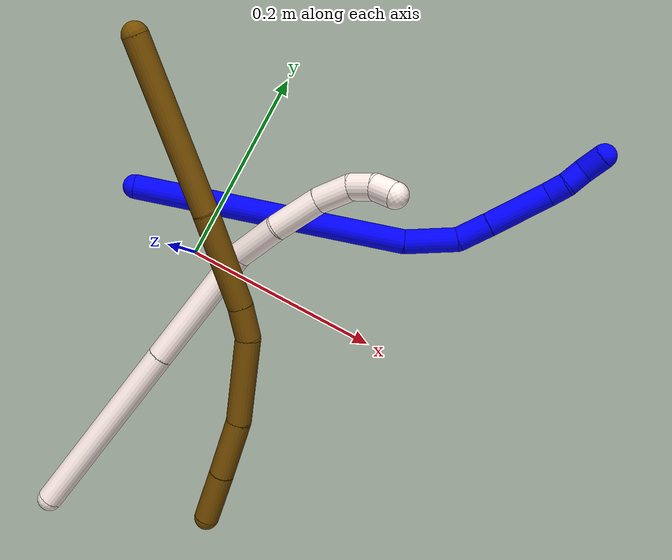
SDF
<sdf version="1.7">
 <world name="default">
  <model name="1">
   <static>0</static>
   <link name="1">
    <collision name="collision-cylinder-e_1_1_4">
     <pose>0.074809 0.035308 0.112748 -0.303488 0.564464 -0.088627</pose>
     <geometry><cylinder><radius>0.0125</radius><length>0.27968</length></cylinder></geometry>
     <surface>
      <friction><ode><mu>1.16</mu><mu2>1.16</mu2><slip1>0</slip1><slip2>0</slip2></ode></friction>
      <contact><ode><kp>1e+06</kp><kd>1</kd><max_vel>0</max_vel><min_depth>0.001</min_depth></ode></contact>
     </surface>
    </collision>
    <visual name="visual-cylinder-e_1_1_4">
     <pose>0.074809 0.035308 0.112748 -0.303488 0.564464 -0.088627</pose>
     <geometry><cylinder><radius>0.0125</radius><length>0.27968</length></cylinder></geometry>
     <material><ambient>0 0 1 1</ambient></material>
    </visual>
    <collision name="collision-cylinder-e_2_4_5">
     <pose>0.167174 0.071193 0.246224 -0.027811 0.702532 -0.010192</pose>
     <geometry><cylinder><radius>0.0125</radius><length>0.054339</length></cylinder></geometry>
     <surface>
      <friction><ode><mu>1.16</mu><mu2>1.16</mu2><slip1>0</slip1><slip2>0</slip2></ode></friction>
      <contact><ode><kp>1e+06</kp><kd>1</kd><max_vel>0</max_vel><min_depth>0.001</min_depth></ode></contact>
     </surface>
    </collision>
    <visual name="visual-cylinder-e_2_4_5">
     <pose>0.167174 0.071193 0.246224 -0.027811 0.702532 -0.010192</pose>
     <geometry><cylinder><radius>0.0125</radius><length>0.054339</length></cylinder></geometry>
     <material><ambient>0 0 1 1</ambient></material>
    </visual>
    <collision name="collision-cylinder-e_3_5_6">
     <pose>0.196224 0.065473 0.277846 0.524041 0.740186 0.20735</pose>
     <geometry><cylinder><radius>0.0125</radius><length>0.034086</length></cylinder></geometry>
     <surface>
      <friction><ode><mu>1.16</mu><mu2>1.16</mu2><slip1>0</slip1><slip2>0</slip2></ode></friction>
      <contact><ode><kp>1e+06</kp><kd>1</kd><max_vel>0</max_vel><min_depth>0.001</min_depth></ode></contact>
     </surface>
    </collision>
    <visual name="visual-cylinder-e_3_5_6">
     <pose>0.196224 0.065473 0.277846 0.524041 0.740186 0.20735</pose>
     <geometry><cylinder><radius>0.0125</radius><length>0.034086</length></cylinder></geometry>
     <material><ambient>0 0 1 1</ambient></material>
    </visual>
    <collision name="collision-cylinder-e_4_6_7">
     <pose>0.229285 0.046365 0.30982 0.546142 0.718435 0.209566</pose>
     <geometry><cylinder><radius>0.0125</radius><length>0.065531</length></cylinder></geometry>
     <surface>
      <friction><ode><mu>1.16</mu><mu2>1.16</mu2><slip1>0</slip1><slip2>0</slip2></ode></friction>
      <contact><ode><kp>1e+06</kp><kd>1</kd><max_vel>0</max_vel><min_depth>0.001</min_depth></ode></contact>
     </surface>
    </collision>
    <visual name="visual-cylinder-e_4_6_7">
     <pose>0.229285 0.046365 0.30982 0.546142 0.718435 0.209566</pose>
     <geometry><cylinder><radius>0.0125</radius><length>0.065531</length></cylinder></geometry>
     <material><ambient>0 0 1 1</ambient></material>
    </visual>
    <collision name="collision-cylinder-e_5_7_8">
     <pose>0.258712 0.02948 0.336156 0.659155 0.868681 0.314723</pose>
     <geometry><cylinder><radius>0.0125</radius><length>0.020591</length></cylinder></geometry>
     <surface>
      <friction><ode><mu>1.16</mu><mu2>1.16</mu2><slip1>0</slip1><slip2>0</slip2></ode></friction>
      <contact><ode><kp>1e+06</kp><kd>1</kd><max_vel>0</max_vel><min_depth>0.001</min_depth></ode></contact>
     </surface>
    </collision>
    <visual name="visual-cylinder-e_5_7_8">
     <pose>0.258712 0.02948 0.336156 0.659155 0.868681 0.314723</pose>
     <geometry><cylinder><radius>0.0125</radius><length>0.020591</length></cylinder></geometry>
     <material><ambient>0 0 1 1</ambient></material>
    </visual>
    <collision name="collision-cylinder-e_6_8_9">
     <pose>0.27296 0.019295 0.347201 0.812588 0.649066 0.287488</pose>
     <geometry><cylinder><radius>0.0125</radius><length>0.021137</length></cylinder></geometry>
     <surface>
      <friction><ode><mu>1.16</mu><mu2>1.16</mu2><slip1>0</slip1><slip2>0</slip2></ode></friction>
      <contact><ode><kp>1e+06</kp><kd>1</kd><max_vel>0</max_vel><min_depth>0.001</min_depth></ode></contact>
     </surface>
    </collision>
    <visual name="visual-cylinder-e_6_8_9">
     <pose>0.27296 0.019295 0.347201 0.812588 0.649066 0.287488</pose>
     <geometry><cylinder><radius>0.0125</radius><length>0.021137</length></cylinder></geometry>
     <material><ambient>0 0 1 1</ambient></material>
    </visual>
    <collision name="collision-cylinder-e_7_9_2">
     <pose>0.289475 0.007468 0.357057 0.952282 0.965098 0.527722</pose>
     <geometry><cylinder><radius>0.0125</radius><length>0.024636</length></cylinder></geometry>
     <surface>
      <friction><ode><mu>1.16</mu><mu2>1.16</mu2><slip1>0</slip1><slip2>0</slip2></ode></friction>
      <contact><ode><kp>1e+06</kp><kd>1</kd><max_vel>0</max_vel><min_depth>0.001</min_depth></ode></contact>
     </surface>
    </collision>
    <visual name="visual-cylinder-e_7_9_2">
     <pose>0.289475 0.007468 0.357057 0.952282 0.965098 0.527722</pose>
     <geometry><cylinder><radius>0.0125</radius><length>0.024636</length></cylinder></geometry>
     <material><ambient>0 0 1 1</ambient></material>
    </visual>
    <collision name="collision-sphere-2">
     <pose>0.299602 0.001754 0.361123 0 -0 0</pose>
     <geometry><sphere><radius>0.0125</radius></sphere></geometry>
     <surface>
      <friction><ode><mu>1.16</mu><mu2>1.16</mu2><slip1>0</slip1><slip2>0</slip2></ode></friction>
      <contact><ode><kp>1e+06</kp><kd>1</kd><max_vel>0</max_vel><min_depth>0.001</min_depth></ode></contact>
     </surface>
    </collision>
    <visual name="visual-sphere-2">
     <pose>0.299602 0.001754 0.361123 0 -0 0</pose>
     <geometry><sphere><radius>0.0125</radius></sphere></geometry>
     <material><ambient>0 0 1 1</ambient></material>
    </visual>
    <collision name="collision-sphere-9">
     <pose>0.279348 0.013182 0.35299 0 -0 0</pose>
     <geometry><sphere><radius>0.0125</radius></sphere></geometry>
     <surface>
      <friction><ode><mu>1.16</mu><mu2>1.16</mu2><slip1>0</slip1><slip2>0</slip2></ode></friction>
      <contact><ode><kp>1e+06</kp><kd>1</kd><max_vel>0</max_vel><min_depth>0.001</min_depth></ode></contact>
     </surface>
    </collision>
    <visual name="visual-sphere-9">
     <pose>0.279348 0.013182 0.35299 0 -0 0</pose>
     <geometry><sphere><radius>0.0125</radius></sphere></geometry>
     <material><ambient>0 0 1 1</ambient></material>
    </visual>
    <collision name="collision-sphere-4">
     <pose>0.149618 0.070617 0.225496 0 -0 0</pose>
     <geometry><sphere><radius>0.0125</radius></sphere></geometry>
     <surface>
      <friction><ode><mu>1.16</mu><mu2>1.16</mu2><slip1>0</slip1><slip2>0</slip2></ode></friction>
      <contact><ode><kp>1e+06</kp><kd>1</kd><max_vel>0</max_vel><min_depth>0.001</min_depth></ode></contact>
     </surface>
    </collision>
    <visual name="visual-sphere-4">
     <pose>0.149618 0.070617 0.225496 0 -0 0</pose>
     <geometry><sphere><radius>0.0125</radius></sphere></geometry>
     <material><ambient>0 0 1 1</ambient></material>
    </visual>
    <collision name="collision-sphere-1">
     <geometry><sphere><radius>0.0125</radius></sphere></geometry>
     <surface>
      <friction><ode><mu>1.16</mu><mu2>1.16</mu2><slip1>0</slip1><slip2>0</slip2></ode></friction>
      <contact><ode><kp>1e+06</kp><kd>1</kd><max_vel>0</max_vel><min_depth>0.001</min_depth></ode></contact>
     </surface>
    </collision>
    <visual name="visual-sphere-1">
     <geometry><sphere><radius>0.0125</radius></sphere></geometry>
     <material><ambient>0 0 1 1</ambient></material>
    </visual>
    <collision name="collision-sphere-8">
     <pose>0.266572 0.025408 0.341412 0 -0 0</pose>
     <geometry><sphere><radius>0.0125</radius></sphere></geometry>
     <surface>
      <friction><ode><mu>1.16</mu><mu2>1.16</mu2><slip1>0</slip1><slip2>0</slip2></ode></friction>
      <contact><ode><kp>1e+06</kp><kd>1</kd><max_vel>0</max_vel><min_depth>0.001</min_depth></ode></contact>
     </surface>
    </collision>
    <visual name="visual-sphere-8">
     <pose>0.266572 0.025408 0.341412 0 -0 0</pose>
     <geometry><sphere><radius>0.0125</radius></sphere></geometry>
     <material><ambient>0 0 1 1</ambient></material>
    </visual>
    <collision name="collision-sphere-5">
     <pose>0.184729 0.07177 0.266951 0 -0 0</pose>
     <geometry><sphere><radius>0.0125</radius></sphere></geometry>
     <surface>
      <friction><ode><mu>1.16</mu><mu2>1.16</mu2><slip1>0</slip1><slip2>0</slip2></ode></friction>
      <contact><ode><kp>1e+06</kp><kd>1</kd><max_vel>0</max_vel><min_depth>0.001</min_depth></ode></contact>
     </surface>
    </collision>
    <visual name="visual-sphere-5">
     <pose>0.184729 0.07177 0.266951 0 -0 0</pose>
     <geometry><sphere><radius>0.0125</radius></sphere></geometry>
     <material><ambient>0 0 1 1</ambient></material>
    </visual>
    <collision name="collision-sphere-6">
     <pose>0.207718 0.059177 0.288742 0 -0 0</pose>
     <geometry><sphere><radius>0.0125</radius></sphere></geometry>
     <surface>
      <friction><ode><mu>1.16</mu><mu2>1.16</mu2><slip1>0</slip1><slip2>0</slip2></ode></friction>
      <contact><ode><kp>1e+06</kp><kd>1</kd><max_vel>0</max_vel><min_depth>0.001</min_depth></ode></contact>
     </surface>
    </collision>
    <visual name="visual-sphere-6">
     <pose>0.207718 0.059177 0.288742 0 -0 0</pose>
     <geometry><sphere><radius>0.0125</radius></sphere></geometry>
     <material><ambient>0 0 1 1</ambient></material>
    </visual>
    <collision name="collision-sphere-7">
     <pose>0.250851 0.033553 0.330899 0 -0 0</pose>
     <geometry><sphere><radius>0.0125</radius></sphere></geometry>
     <surface>
      <friction><ode><mu>1.16</mu><mu2>1.16</mu2><slip1>0</slip1><slip2>0</slip2></ode></friction>
      <contact><ode><kp>1e+06</kp><kd>1</kd><max_vel>0</max_vel><min_depth>0.001</min_depth></ode></contact>
     </surface>
    </collision>
    <visual name="visual-sphere-7">
     <pose>0.250851 0.033553 0.330899 0 -0 0</pose>
     <geometry><sphere><radius>0.0125</radius></sphere></geometry>
     <material><ambient>0 0 1 1</ambient></material>
    </visual>
    <inertial>
     <pose>0.139897 0.040425 0.195487 0 -0 0</pose>
     <mass>0.5</mass>
     <inertia>
      <ixx>0.001473</ixx>
      <ixy>0</ixy>
      <ixz>0</ixz>
      <iyy>0.001686</iyy>
      <iyz>0</iyz>
      <izz>-0.001436</izz>
     </inertia>
    </inertial>
   </link>
   <pose>-0.084567 0.030231 0.011493 3.03291 -0.96611 0.634221</pose>
  </model>
  <model name="11">
   <static>0</static>
   <link name="11">
    <collision name="collision-cylinder-e_1_1_4">
     <pose>0.02085 0.050619 0.079327 -0.567972 0.218047 -0.063874</pose>
     <geometry><cylinder><radius>0.0125</radius><length>0.192767</length></cylinder></geometry>
     <surface>
      <friction><ode><mu>1.16</mu><mu2>1.16</mu2><slip1>0</slip1><slip2>0</slip2></ode></friction>
      <contact><ode><kp>1e+06</kp><kd>1</kd><max_vel>0</max_vel><min_depth>0.001</min_depth></ode></contact>
     </surface>
    </collision>
    <visual name="visual-cylinder-e_1_1_4">
     <pose>0.02085 0.050619 0.079327 -0.567972 0.218047 -0.063874</pose>
     <geometry><cylinder><radius>0.0125</radius><length>0.192767</length></cylinder></geometry>
     <material><ambient>1 0.933333 0.909804 1</ambient></material>
    </visual>
    <collision name="collision-cylinder-e_2_4_5">
     <pose>0.05691 0.135089 0.210434 -0.57899 0.241077 -0.072126</pose>
     <geometry><cylinder><radius>0.0125</radius><length>0.127411</length></cylinder></geometry>
     <surface>
      <friction><ode><mu>1.16</mu><mu2>1.16</mu2><slip1>0</slip1><slip2>0</slip2></ode></friction>
      <contact><ode><kp>1e+06</kp><kd>1</kd><max_vel>0</max_vel><min_depth>0.001</min_depth></ode></contact>
     </surface>
    </collision>
    <visual name="visual-cylinder-e_2_4_5">
     <pose>0.05691 0.135089 0.210434 -0.57899 0.241077 -0.072126</pose>
     <geometry><cylinder><radius>0.0125</radius><length>0.127411</length></cylinder></geometry>
     <material><ambient>1 0.933333 0.909804 1</ambient></material>
    </visual>
    <collision name="collision-cylinder-e_3_5_6">
     <pose>0.074048 0.173847 0.286761 -0.197357 0.076918 -0.007619</pose>
     <geometry><cylinder><radius>0.0125</radius><length>0.050213</length></cylinder></geometry>
     <surface>
      <friction><ode><mu>1.16</mu><mu2>1.16</mu2><slip1>0</slip1><slip2>0</slip2></ode></friction>
      <contact><ode><kp>1e+06</kp><kd>1</kd><max_vel>0</max_vel><min_depth>0.001</min_depth></ode></contact>
     </surface>
    </collision>
    <visual name="visual-cylinder-e_3_5_6">
     <pose>0.074048 0.173847 0.286761 -0.197357 0.076918 -0.007619</pose>
     <geometry><cylinder><radius>0.0125</radius><length>0.050213</length></cylinder></geometry>
     <material><ambient>1 0.933333 0.909804 1</ambient></material>
    </visual>
    <collision name="collision-cylinder-e_4_6_7">
     <pose>0.082087 0.183708 0.334228 -0.212779 0.254857 -0.027363</pose>
     <geometry><cylinder><radius>0.0125</radius><length>0.048464</length></cylinder></geometry>
     <surface>
      <friction><ode><mu>1.16</mu><mu2>1.16</mu2><slip1>0</slip1><slip2>0</slip2></ode></friction>
      <contact><ode><kp>1e+06</kp><kd>1</kd><max_vel>0</max_vel><min_depth>0.001</min_depth></ode></contact>
     </surface>
    </collision>
    <visual name="visual-cylinder-e_4_6_7">
     <pose>0.082087 0.183708 0.334228 -0.212779 0.254857 -0.027363</pose>
     <geometry><cylinder><radius>0.0125</radius><length>0.048464</length></cylinder></geometry>
     <material><ambient>1 0.933333 0.909804 1</ambient></material>
    </visual>
    <collision name="collision-cylinder-e_5_7_8">
     <pose>0.092125 0.188958 0.374004 -0.017716 0.228947 -0.002037</pose>
     <geometry><cylinder><radius>0.0125</radius><length>0.034621</length></cylinder></geometry>
     <surface>
      <friction><ode><mu>1.16</mu><mu2>1.16</mu2><slip1>0</slip1><slip2>0</slip2></ode></friction>
      <contact><ode><kp>1e+06</kp><kd>1</kd><max_vel>0</max_vel><min_depth>0.001</min_depth></ode></contact>
     </surface>
    </collision>
    <visual name="visual-cylinder-e_5_7_8">
     <pose>0.092125 0.188958 0.374004 -0.017716 0.228947 -0.002037</pose>
     <geometry><cylinder><radius>0.0125</radius><length>0.034621</length></cylinder></geometry>
     <material><ambient>1 0.933333 0.909804 1</ambient></material>
    </visual>
    <collision name="collision-cylinder-e_6_8_9">
     <pose>0.097336 0.184862 0.402124 0.372049 0.105696 0.01991</pose>
     <geometry><cylinder><radius>0.0125</radius><length>0.024317</length></cylinder></geometry>
     <surface>
      <friction><ode><mu>1.16</mu><mu2>1.16</mu2><slip1>0</slip1><slip2>0</slip2></ode></friction>
      <contact><ode><kp>1e+06</kp><kd>1</kd><max_vel>0</max_vel><min_depth>0.001</min_depth></ode></contact>
     </surface>
    </collision>
    <visual name="visual-cylinder-e_6_8_9">
     <pose>0.097336 0.184862 0.402124 0.372049 0.105696 0.01991</pose>
     <geometry><cylinder><radius>0.0125</radius><length>0.024317</length></cylinder></geometry>
     <material><ambient>1 0.933333 0.909804 1</ambient></material>
    </visual>
    <collision name="collision-cylinder-e_7_9_2">
     <pose>0.099197 0.17327 0.421823 0.70627 0.052089 0.019203</pose>
     <geometry><cylinder><radius>0.0125</radius><length>0.022207</length></cylinder></geometry>
     <surface>
      <friction><ode><mu>1.16</mu><mu2>1.16</mu2><slip1>0</slip1><slip2>0</slip2></ode></friction>
      <contact><ode><kp>1e+06</kp><kd>1</kd><max_vel>0</max_vel><min_depth>0.001</min_depth></ode></contact>
     </surface>
    </collision>
    <visual name="visual-cylinder-e_7_9_2">
     <pose>0.099197 0.17327 0.421823 0.70627 0.052089 0.019203</pose>
     <geometry><cylinder><radius>0.0125</radius><length>0.022207</length></cylinder></geometry>
     <material><ambient>1 0.933333 0.909804 1</ambient></material>
    </visual>
    <collision name="collision-sphere-2">
     <pose>0.099775 0.166073 0.430259 0 -0 0</pose>
     <geometry><sphere><radius>0.0125</radius></sphere></geometry>
     <surface>
      <friction><ode><mu>1.16</mu><mu2>1.16</mu2><slip1>0</slip1><slip2>0</slip2></ode></friction>
      <contact><ode><kp>1e+06</kp><kd>1</kd><max_vel>0</max_vel><min_depth>0.001</min_depth></ode></contact>
     </surface>
    </collision>
    <visual name="visual-sphere-2">
     <pose>0.099775 0.166073 0.430259 0 -0 0</pose>
     <geometry><sphere><radius>0.0125</radius></sphere></geometry>
     <material><ambient>1 0.933333 0.909804 1</ambient></material>
    </visual>
    <collision name="collision-sphere-9">
     <pose>0.098619 0.180466 0.413387 0 -0 0</pose>
     <geometry><sphere><radius>0.0125</radius></sphere></geometry>
     <surface>
      <friction><ode><mu>1.16</mu><mu2>1.16</mu2><slip1>0</slip1><slip2>0</slip2></ode></friction>
      <contact><ode><kp>1e+06</kp><kd>1</kd><max_vel>0</max_vel><min_depth>0.001</min_depth></ode></contact>
     </surface>
    </collision>
    <visual name="visual-sphere-9">
     <pose>0.098619 0.180466 0.413387 0 -0 0</pose>
     <geometry><sphere><radius>0.0125</radius></sphere></geometry>
     <material><ambient>1 0.933333 0.909804 1</ambient></material>
    </visual>
    <collision name="collision-sphere-4">
     <pose>0.0417 0.101238 0.158653 0 -0 0</pose>
     <geometry><sphere><radius>0.0125</radius></sphere></geometry>
     <surface>
      <friction><ode><mu>1.16</mu><mu2>1.16</mu2><slip1>0</slip1><slip2>0</slip2></ode></friction>
      <contact><ode><kp>1e+06</kp><kd>1</kd><max_vel>0</max_vel><min_depth>0.001</min_depth></ode></contact>
     </surface>
    </collision>
    <visual name="visual-sphere-4">
     <pose>0.0417 0.101238 0.158653 0 -0 0</pose>
     <geometry><sphere><radius>0.0125</radius></sphere></geometry>
     <material><ambient>1 0.933333 0.909804 1</ambient></material>
    </visual>
    <collision name="collision-sphere-1">
     <geometry><sphere><radius>0.0125</radius></sphere></geometry>
     <surface>
      <friction><ode><mu>1.16</mu><mu2>1.16</mu2><slip1>0</slip1><slip2>0</slip2></ode></friction>
      <contact><ode><kp>1e+06</kp><kd>1</kd><max_vel>0</max_vel><min_depth>0.001</min_depth></ode></contact>
     </surface>
    </collision>
    <visual name="visual-sphere-1">
     <geometry><sphere><radius>0.0125</radius></sphere></geometry>
     <material><ambient>1 0.933333 0.909804 1</ambient></material>
    </visual>
    <collision name="collision-sphere-8">
     <pose>0.096053 0.189257 0.39086 0 -0 0</pose>
     <geometry><sphere><radius>0.0125</radius></sphere></geometry>
     <surface>
      <friction><ode><mu>1.16</mu><mu2>1.16</mu2><slip1>0</slip1><slip2>0</slip2></ode></friction>
      <contact><ode><kp>1e+06</kp><kd>1</kd><max_vel>0</max_vel><min_depth>0.001</min_depth></ode></contact>
     </surface>
    </collision>
    <visual name="visual-sphere-8">
     <pose>0.096053 0.189257 0.39086 0 -0 0</pose>
     <geometry><sphere><radius>0.0125</radius></sphere></geometry>
     <material><ambient>1 0.933333 0.909804 1</ambient></material>
    </visual>
    <collision name="collision-sphere-5">
     <pose>0.072119 0.168939 0.262215 0 -0 0</pose>
     <geometry><sphere><radius>0.0125</radius></sphere></geometry>
     <surface>
      <friction><ode><mu>1.16</mu><mu2>1.16</mu2><slip1>0</slip1><slip2>0</slip2></ode></friction>
      <contact><ode><kp>1e+06</kp><kd>1</kd><max_vel>0</max_vel><min_depth>0.001</min_depth></ode></contact>
     </surface>
    </collision>
    <visual name="visual-sphere-5">
     <pose>0.072119 0.168939 0.262215 0 -0 0</pose>
     <geometry><sphere><radius>0.0125</radius></sphere></geometry>
     <material><ambient>1 0.933333 0.909804 1</ambient></material>
    </visual>
    <collision name="collision-sphere-6">
     <pose>0.075978 0.178756 0.311307 0 -0 0</pose>
     <geometry><sphere><radius>0.0125</radius></sphere></geometry>
     <surface>
      <friction><ode><mu>1.16</mu><mu2>1.16</mu2><slip1>0</slip1><slip2>0</slip2></ode></friction>
      <contact><ode><kp>1e+06</kp><kd>1</kd><max_vel>0</max_vel><min_depth>0.001</min_depth></ode></contact>
     </surface>
    </collision>
    <visual name="visual-sphere-6">
     <pose>0.075978 0.178756 0.311307 0 -0 0</pose>
     <geometry><sphere><radius>0.0125</radius></sphere></geometry>
     <material><ambient>1 0.933333 0.909804 1</ambient></material>
    </visual>
    <collision name="collision-sphere-7">
     <pose>0.088196 0.18866 0.357148 0 -0 0</pose>
     <geometry><sphere><radius>0.0125</radius></sphere></geometry>
     <surface>
      <friction><ode><mu>1.16</mu><mu2>1.16</mu2><slip1>0</slip1><slip2>0</slip2></ode></friction>
      <contact><ode><kp>1e+06</kp><kd>1</kd><max_vel>0</max_vel><min_depth>0.001</min_depth></ode></contact>
     </surface>
    </collision>
    <visual name="visual-sphere-7">
     <pose>0.088196 0.18866 0.357148 0 -0 0</pose>
     <geometry><sphere><radius>0.0125</radius></sphere></geometry>
     <material><ambient>1 0.933333 0.909804 1</ambient></material>
    </visual>
    <inertial>
     <pose>0.053452 0.118974 0.209589 0 -0 0</pose>
     <mass>0.5</mass>
     <inertia>
      <ixx>0.00075</ixx>
      <ixy>0</ixy>
      <ixz>0</ixz>
      <iyy>0.000657</iyy>
      <iyz>0</iyz>
      <izz>-0.000559</izz>
     </inertia>
    </inertial>
   </link>
   <pose>-0.010149 -0.288468 0.01848 -0.293447 0.907908 0.522247</pose>
  </model>
  <model name="12">
   <static>0</static>
   <link name="12">
    <collision name="collision-cylinder-e_1_1_4">
     <pose>0.020131 -0.016923 -0.079447 2.93172 0.24294 1.71782</pose>
     <geometry><cylinder><radius>0.0125</radius><length>0.167373</length></cylinder></geometry>
     <surface>
      <friction><ode><mu>1.16</mu><mu2>1.16</mu2><slip1>0</slip1><slip2>0</slip2></ode></friction>
      <contact><ode><kp>1e+06</kp><kd>1</kd><max_vel>0</max_vel><min_depth>0.001</min_depth></ode></contact>
     </surface>
    </collision>
    <visual name="visual-cylinder-e_1_1_4">
     <pose>0.020131 -0.016923 -0.079447 2.93172 0.24294 1.71782</pose>
     <geometry><cylinder><radius>0.0125</radius><length>0.167373</length></cylinder></geometry>
     <material><ambient>0.466667 0.301961 0 1</ambient></material>
    </visual>
    <collision name="collision-cylinder-e_2_4_5">
     <pose>0.053996 -0.048385 -0.202543 2.82008 0.29008 1.46649</pose>
     <geometry><cylinder><radius>0.0125</radius><length>0.096027</length></cylinder></geometry>
     <surface>
      <friction><ode><mu>1.16</mu><mu2>1.16</mu2><slip1>0</slip1><slip2>0</slip2></ode></friction>
      <contact><ode><kp>1e+06</kp><kd>1</kd><max_vel>0</max_vel><min_depth>0.001</min_depth></ode></contact>
     </surface>
    </collision>
    <visual name="visual-cylinder-e_2_4_5">
     <pose>0.053996 -0.048385 -0.202543 2.82008 0.29008 1.46649</pose>
     <geometry><cylinder><radius>0.0125</radius><length>0.096027</length></cylinder></geometry>
     <material><ambient>0.466667 0.301961 0 1</ambient></material>
    </visual>
    <collision name="collision-cylinder-e_3_5_6">
     <pose>0.074239 -0.067333 -0.261182 2.85547 0.394772 1.89321</pose>
     <geometry><cylinder><radius>0.0125</radius><length>0.03385</length></cylinder></geometry>
     <surface>
      <friction><ode><mu>1.16</mu><mu2>1.16</mu2><slip1>0</slip1><slip2>0</slip2></ode></friction>
      <contact><ode><kp>1e+06</kp><kd>1</kd><max_vel>0</max_vel><min_depth>0.001</min_depth></ode></contact>
     </surface>
    </collision>
    <visual name="visual-cylinder-e_3_5_6">
     <pose>0.074239 -0.067333 -0.261182 2.85547 0.394772 1.89321</pose>
     <geometry><cylinder><radius>0.0125</radius><length>0.03385</length></cylinder></geometry>
     <material><ambient>0.466667 0.301961 0 1</ambient></material>
    </visual>
    <collision name="collision-cylinder-e_4_6_7">
     <pose>0.109716 -0.079293 -0.30858 2.9127 0.716266 2.54562</pose>
     <geometry><cylinder><radius>0.0125</radius><length>0.088239</length></cylinder></geometry>
     <surface>
      <friction><ode><mu>1.16</mu><mu2>1.16</mu2><slip1>0</slip1><slip2>0</slip2></ode></friction>
      <contact><ode><kp>1e+06</kp><kd>1</kd><max_vel>0</max_vel><min_depth>0.001</min_depth></ode></contact>
     </surface>
    </collision>
    <visual name="visual-cylinder-e_4_6_7">
     <pose>0.109716 -0.079293 -0.30858 2.9127 0.716266 2.54562</pose>
     <geometry><cylinder><radius>0.0125</radius><length>0.088239</length></cylinder></geometry>
     <material><ambient>0.466667 0.301961 0 1</ambient></material>
    </visual>
    <collision name="collision-cylinder-e_5_7_8">
     <pose>0.162477 -0.090869 -0.359412 2.92646 0.900632 2.70208</pose>
     <geometry><cylinder><radius>0.0125</radius><length>0.06072</length></cylinder></geometry>
     <surface>
      <friction><ode><mu>1.16</mu><mu2>1.16</mu2><slip1>0</slip1><slip2>0</slip2></ode></friction>
      <contact><ode><kp>1e+06</kp><kd>1</kd><max_vel>0</max_vel><min_depth>0.001</min_depth></ode></contact>
     </surface>
    </collision>
    <visual name="visual-cylinder-e_5_7_8">
     <pose>0.162477 -0.090869 -0.359412 2.92646 0.900632 2.70208</pose>
     <geometry><cylinder><radius>0.0125</radius><length>0.06072</length></cylinder></geometry>
     <material><ambient>0.466667 0.301961 0 1</ambient></material>
    </visual>
    <collision name="collision-cylinder-e_6_8_2">
     <pose>0.207558 -0.099308 -0.393669 2.86982 0.913206 2.59865</pose>
     <geometry><cylinder><radius>0.0125</radius><length>0.05379</length></cylinder></geometry>
     <surface>
      <friction><ode><mu>1.16</mu><mu2>1.16</mu2><slip1>0</slip1><slip2>0</slip2></ode></friction>
      <contact><ode><kp>1e+06</kp><kd>1</kd><max_vel>0</max_vel><min_depth>0.001</min_depth></ode></contact>
     </surface>
    </collision>
    <visual name="visual-cylinder-e_6_8_2">
     <pose>0.207558 -0.099308 -0.393669 2.86982 0.913206 2.59865</pose>
     <geometry><cylinder><radius>0.0125</radius><length>0.05379</length></cylinder></geometry>
     <material><ambient>0.466667 0.301961 0 1</ambient></material>
    </visual>
    <collision name="collision-sphere-2">
     <pose>0.228844 -0.10372 -0.409505 0 -0 0</pose>
     <geometry><sphere><radius>0.0125</radius></sphere></geometry>
     <surface>
      <friction><ode><mu>1.16</mu><mu2>1.16</mu2><slip1>0</slip1><slip2>0</slip2></ode></friction>
      <contact><ode><kp>1e+06</kp><kd>1</kd><max_vel>0</max_vel><min_depth>0.001</min_depth></ode></contact>
     </surface>
    </collision>
    <visual name="visual-sphere-2">
     <pose>0.228844 -0.10372 -0.409505 0 -0 0</pose>
     <geometry><sphere><radius>0.0125</radius></sphere></geometry>
     <material><ambient>0.466667 0.301961 0 1</ambient></material>
    </visual>
    <collision name="collision-sphere-4">
     <pose>0.040263 -0.033846 -0.158893 0 -0 0</pose>
     <geometry><sphere><radius>0.0125</radius></sphere></geometry>
     <surface>
      <friction><ode><mu>1.16</mu><mu2>1.16</mu2><slip1>0</slip1><slip2>0</slip2></ode></friction>
      <contact><ode><kp>1e+06</kp><kd>1</kd><max_vel>0</max_vel><min_depth>0.001</min_depth></ode></contact>
     </surface>
    </collision>
    <visual name="visual-sphere-4">
     <pose>0.040263 -0.033846 -0.158893 0 -0 0</pose>
     <geometry><sphere><radius>0.0125</radius></sphere></geometry>
     <material><ambient>0.466667 0.301961 0 1</ambient></material>
    </visual>
    <collision name="collision-sphere-1">
     <geometry><sphere><radius>0.0125</radius></sphere></geometry>
     <surface>
      <friction><ode><mu>1.16</mu><mu2>1.16</mu2><slip1>0</slip1><slip2>0</slip2></ode></friction>
      <contact><ode><kp>1e+06</kp><kd>1</kd><max_vel>0</max_vel><min_depth>0.001</min_depth></ode></contact>
     </surface>
    </collision>
    <visual name="visual-sphere-1">
     <geometry><sphere><radius>0.0125</radius></sphere></geometry>
     <material><ambient>0.466667 0.301961 0 1</ambient></material>
    </visual>
    <collision name="collision-sphere-8">
     <pose>0.186271 -0.094895 -0.377834 0 -0 0</pose>
     <geometry><sphere><radius>0.0125</radius></sphere></geometry>
     <surface>
      <friction><ode><mu>1.16</mu><mu2>1.16</mu2><slip1>0</slip1><slip2>0</slip2></ode></friction>
      <contact><ode><kp>1e+06</kp><kd>1</kd><max_vel>0</max_vel><min_depth>0.001</min_depth></ode></contact>
     </surface>
    </collision>
    <visual name="visual-sphere-8">
     <pose>0.186271 -0.094895 -0.377834 0 -0 0</pose>
     <geometry><sphere><radius>0.0125</radius></sphere></geometry>
     <material><ambient>0.466667 0.301961 0 1</ambient></material>
    </visual>
    <collision name="collision-sphere-5">
     <pose>0.067729 -0.062923 -0.246193 0 -0 0</pose>
     <geometry><sphere><radius>0.0125</radius></sphere></geometry>
     <surface>
      <friction><ode><mu>1.16</mu><mu2>1.16</mu2><slip1>0</slip1><slip2>0</slip2></ode></friction>
      <contact><ode><kp>1e+06</kp><kd>1</kd><max_vel>0</max_vel><min_depth>0.001</min_depth></ode></contact>
     </surface>
    </collision>
    <visual name="visual-sphere-5">
     <pose>0.067729 -0.062923 -0.246193 0 -0 0</pose>
     <geometry><sphere><radius>0.0125</radius></sphere></geometry>
     <material><ambient>0.466667 0.301961 0 1</ambient></material>
    </visual>
    <collision name="collision-sphere-6">
     <pose>0.080748 -0.071742 -0.27617 0 -0 0</pose>
     <geometry><sphere><radius>0.0125</radius></sphere></geometry>
     <surface>
      <friction><ode><mu>1.16</mu><mu2>1.16</mu2><slip1>0</slip1><slip2>0</slip2></ode></friction>
      <contact><ode><kp>1e+06</kp><kd>1</kd><max_vel>0</max_vel><min_depth>0.001</min_depth></ode></contact>
     </surface>
    </collision>
    <visual name="visual-sphere-6">
     <pose>0.080748 -0.071742 -0.27617 0 -0 0</pose>
     <geometry><sphere><radius>0.0125</radius></sphere></geometry>
     <material><ambient>0.466667 0.301961 0 1</ambient></material>
    </visual>
    <collision name="collision-sphere-7">
     <pose>0.138684 -0.086844 -0.340989 0 -0 0</pose>
     <geometry><sphere><radius>0.0125</radius></sphere></geometry>
     <surface>
      <friction><ode><mu>1.16</mu><mu2>1.16</mu2><slip1>0</slip1><slip2>0</slip2></ode></friction>
      <contact><ode><kp>1e+06</kp><kd>1</kd><max_vel>0</max_vel><min_depth>0.001</min_depth></ode></contact>
     </surface>
    </collision>
    <visual name="visual-sphere-7">
     <pose>0.138684 -0.086844 -0.340989 0 -0 0</pose>
     <geometry><sphere><radius>0.0125</radius></sphere></geometry>
     <material><ambient>0.466667 0.301961 0 1</ambient></material>
    </visual>
    <inertial>
     <pose>0.083558 -0.055228 -0.223632 0 -0 0</pose>
     <mass>0.5</mass>
     <inertia>
      <ixx>0.000406</ixx>
      <ixy>0</ixy>
      <ixz>0</ixz>
      <iyy>0.000653</iyy>
      <iyz>0</iyz>
      <izz>-9.9e-05</izz>
     </inertia>
    </inertial>
   </link>
   <pose>-0.114583 0.14586 0.172598 1.56383 0.234655 -2.09983</pose>
  </model>
 </world>
</sdf>
